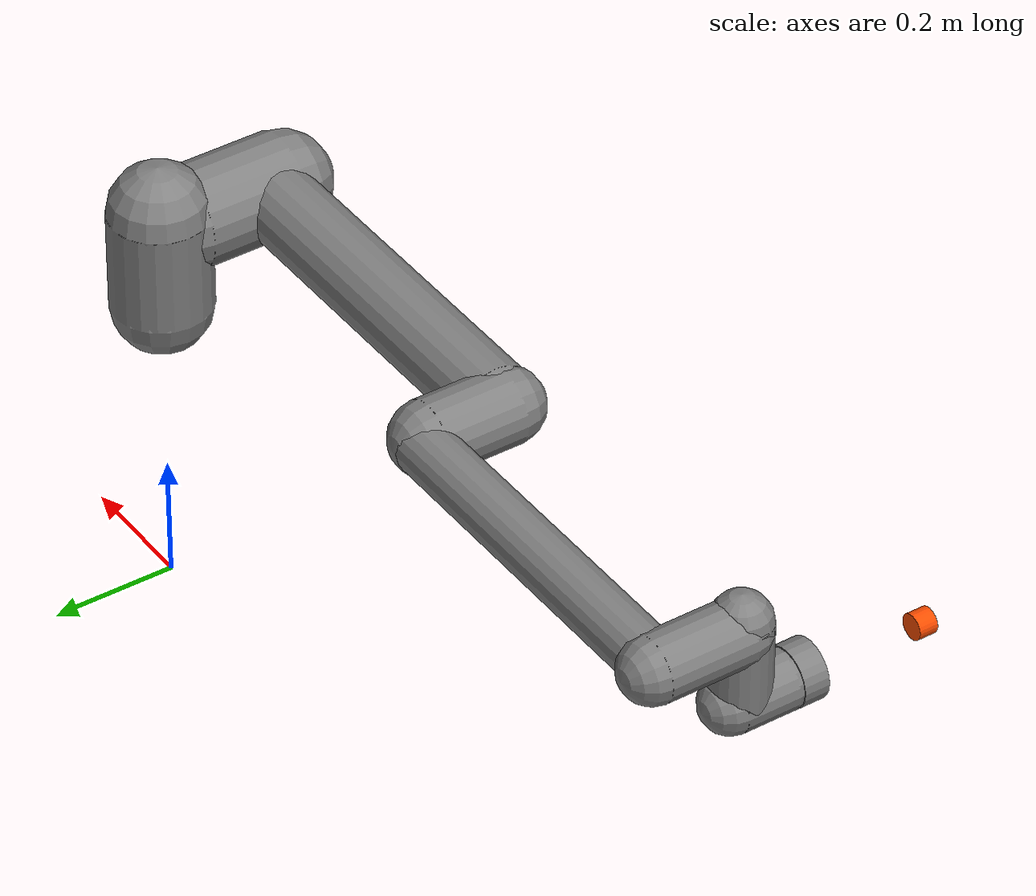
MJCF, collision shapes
<mujoco model="ur10e">
  <compiler angle="radian" meshdir="assets" autolimits="true"/>

  <option integrator="implicitfast"/>

  <default>
    <default class="ur10e">
      <material specular="0.5" shininess="0.25"/>
      <joint axis="0 1 0" range="-6.28319 6.28319" armature="0.1"/>
      <position ctrlrange="-6.2831 6.2831"/>
      <general biastype="affine" ctrlrange="-6.2831 6.2831" gainprm="5000" biasprm="0 -5000 -500"/>
      <default class="size4">
        <joint damping="10"/>
        <general forcerange="-330 330"/>
      </default>
      <default class="size3">
        <joint damping="5"/>
        <general forcerange="-150 150"/>
        <default class="size3_limited">
          <joint range="-3.1415 3.1415"/>
          <general ctrlrange="-3.1415 3.1415"/>
        </default>
      </default>
      <default class="size2">
        <joint damping="2"/>
        <general forcerange="-56 56"/>
      </default>
      <default class="visual">
        <geom type="mesh" contype="0" conaffinity="0" group="2"/>
      </default>
      <default class="collision">
        <geom type="capsule" group="3"/>
        <default class="eef_collision">
          <geom type="cylinder"/>
        </default>
      </default>
      <site size="0.001" rgba="0.5 0.5 0.5 0.3" group="4"/>
    </default>
  </default>

  <asset>
    <material class="ur10e" name="black" rgba="0.033 0.033 0.033 1"/>
    <material class="ur10e" name="jointgray" rgba="0.278 0.278 0.278 1"/>
    <material class="ur10e" name="linkgray" rgba="0.82 0.82 0.82 1"/>
    <material class="ur10e" name="urblue" rgba="0.49 0.678 0.8 1"/>

    <mesh file="assets/base_0.obj"/>
    <mesh file="assets/base_1.obj"/>
    <mesh file="assets/shoulder_0.obj"/>
    <mesh file="assets/shoulder_1.obj"/>
    <mesh file="assets/shoulder_2.obj"/>
    <mesh file="assets/upperarm_0.obj"/>
    <mesh file="assets/upperarm_1.obj"/>
    <mesh file="assets/upperarm_2.obj"/>
    <mesh file="assets/upperarm_3.obj"/>
    <mesh file="assets/forearm_0.obj"/>
    <mesh file="assets/forearm_1.obj"/>
    <mesh file="assets/forearm_2.obj"/>
    <mesh file="assets/forearm_3.obj"/>
    <mesh file="assets/wrist1_0.obj"/>
    <mesh file="assets/wrist1_1.obj"/>
    <mesh file="assets/wrist1_2.obj"/>
    <mesh file="assets/wrist2_0.obj"/>
    <mesh file="assets/wrist2_1.obj"/>
    <mesh file="assets/wrist2_2.obj"/>
    <mesh file="assets/wrist3.obj"/>
    <mesh name="ee_mesh" file="assets/EE.obj" scale="0.001 0.001 0.001"/>
  </asset>

  <worldbody>
    <light name="spotlight" mode="targetbodycom" target="wrist_2_link" pos="0 -1 2"/>
    <body name="base" pos="0 0 0.45" quat="0 0 0 -1" childclass="ur10e">
      <inertial mass="4.0" pos="0 0 0" diaginertia="0.0061063308908 0.0061063308908 0.01125"/>
      <geom mesh="base_0" material="black" class="visual"/>
      <geom mesh="base_1" material="jointgray" class="visual"/>
      <body name="shoulder_link" pos="0 0 0.181">
        <inertial pos="0 0 0" mass="7.778" diaginertia="0.0314743 0.0314743 0.0218756"/>
        <joint name="shoulder_pan_joint" class="size4" axis="0 0 1"/>
        <geom mesh="shoulder_0" material="urblue" class="visual"/>
        <geom mesh="shoulder_1" material="black" class="visual"/>
        <geom mesh="shoulder_2" material="jointgray" class="visual"/>
        <geom class="collision" size="0.078 0.08" pos="0 0 -0.05"/>
        <body name="upper_arm_link" pos="0 0.176 0" quat="1 0 1 0">
          <inertial pos="0 0 0.3065" mass="12.93" diaginertia="0.423074 0.423074 0.0363656"/>
          <joint name="shoulder_lift_joint" class="size4"/>
          <geom mesh="upperarm_0" material="black" class="visual"/>
          <geom mesh="upperarm_1" material="jointgray" class="visual"/>
          <geom mesh="upperarm_2" material="urblue" class="visual"/>
          <geom mesh="upperarm_3" material="linkgray" class="visual"/>
          <geom class="collision" pos="0 -0.05 0" quat="1 1 0 0" size="0.078 0.08"/>
          <geom class="collision" size="0.06 0.3" pos="0 0 0.3"/>
          <body name="forearm_link" pos="0 -0.137 0.613">
            <inertial pos="0 0 0.2855" mass="3.87" diaginertia="0.11059 0.11059 0.0108844"/>
            <joint name="elbow_joint" class="size3_limited"/>
            <geom mesh="forearm_0" material="urblue" class="visual"/>
            <geom mesh="forearm_1" material="black" class="visual"/>
            <geom mesh="forearm_2" material="jointgray" class="visual"/>
            <geom mesh="forearm_3" material="linkgray" class="visual"/>
            <geom class="collision" pos="0 0.08 0" quat="1 1 0 0" size="0.058 0.065"/>
            <geom class="collision" size="0.043 0.28" pos="0 0 0.29"/>
            <body name="wrist_1_link" pos="0 0 0.571" quat="1 0 1 0">
              <inertial pos="0 0.135 0" quat="0.5 0.5 -0.5 0.5" mass="1.96"
                diaginertia="0.0055125 0.00510825 0.00510825"/>
              <joint name="wrist_1_joint" class="size2"/>
              <geom mesh="wrist1_0" material="black" class="visual"/>
              <geom mesh="wrist1_1" material="urblue" class="visual"/>
              <geom mesh="wrist1_2" material="jointgray" class="visual"/>
              <geom class="collision" pos="0 0.06 0" quat="1 1 0 0" size="0.05 0.07"/>
              <body name="wrist_2_link" pos="0 0.135 0">
                <inertial pos="0 0 0.12" quat="0.5 0.5 -0.5 0.5" mass="1.96"
                  diaginertia="0.0055125 0.00510825 0.00510825"/>
                <joint name="wrist_2_joint" axis="0 0 1" class="size2"/>
                <geom mesh="wrist2_0" material="black" class="visual"/>
                <geom mesh="wrist2_1" material="urblue" class="visual"/>
                <geom mesh="wrist2_2" material="jointgray" class="visual"/>
                <geom class="collision" size="0.046 0.065" pos="0 0 0.05"/>
                <geom class="collision" pos="0 0.028 0.12" quat="1 1 0 0" size="0.046 0.043"/>
                <body name="wrist_3_link" pos="0 0 0.12">
                  <inertial pos="0 0.092 0" quat="0 1 -1 0" mass="0.202"
                    diaginertia="0.000204525 0.000144346 0.000144346"/>
                  <joint name="wrist_3_joint" class="size2"/>
                  <geom material="linkgray" mesh="wrist3" class="visual"/>
                  <geom class="eef_collision" pos="0 0.097 0" quat="1 1 0 0" size="0.046 0.02"/>
                  <!-- 기존 UR10e 끝단 기준점 -->
                  <site name="attachment_site" pos="0 0.1 0" quat="-1 1 0 0"/>
                  <!-- 추가: 직접 제작한 EE -->
                  <body name="custom_ee" pos="0 0.1 0" euler="0 0 0">
                    <geom
                      name="ee_visual"
                      type="mesh"
                      mesh="ee_mesh"
                      pos="0.08 0.1 -0.03"
                      euler="1.5708 0 0"
                      rgba="0.2 0.6 0.9 1"
                      contype="0"
                      conaffinity="0"
                      group="2"/>
                    <geom
                      name="ee_tip_collision"
                      type="cylinder"
                      size="0.020 0.015"
                      pos="0 0.2041 0.012"
                      euler="1.5708 0 0"
                      contype="2" conaffinity="2"
                      group="2"
                      rgba="1 0.3 0 0.3"/>
                    <site
                      name="charger_tip_site"
                      pos="0 0.2041 0.012"
                      xyaxes="0.0085 0.9999 0.0079  -1 0.0085 0"
                      size="0.02"
                      rgba="0 1 0 1"
                      group="4"/>
                    <!-- 삽입축 방향 표시: tip 에서 커넥터 forward 로 +0.10 m -->
                    <site
                      name="charger_axis_site"
                      pos="0.0008 0.3041 0.0128"
                      size="0.015"
                      rgba="0 0 1 1"
                      group="4"/>
                    <camera
                      name="cam_eih"
                      pos="0 0.04 0.11"
                      euler="1.30 0 0"
                      fovy="42.5"/>
                  </body>

                </body>
              </body>
            </body>
          </body>
        </body>
      </body>
    </body>
  </worldbody>

  <actuator>
    <general class="size4" name="shoulder_pan" joint="shoulder_pan_joint"/>
    <general class="size4" name="shoulder_lift" joint="shoulder_lift_joint"/>
    <general class="size3_limited" name="elbow" joint="elbow_joint"/>
    <general class="size2" name="wrist_1" joint="wrist_1_joint"/>
    <general class="size2" name="wrist_2" joint="wrist_2_joint"/>
    <general class="size2" name="wrist_3" joint="wrist_3_joint"/>
  </actuator>

  <keyframe>
    <key name="home" qpos="-1.5708 -1.9 2.0 -1.6 -1.5708 0" ctrl="-1.5708 -1.9 2.0 -1.6 -1.5708 0"/>
  </keyframe>
</mujoco>
